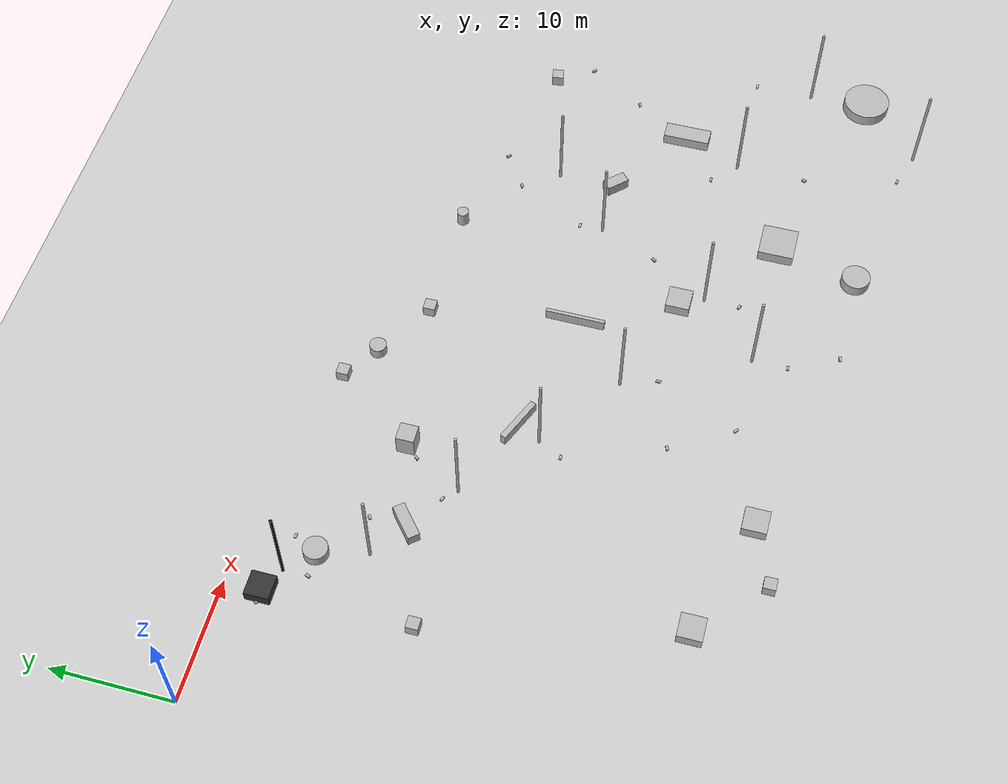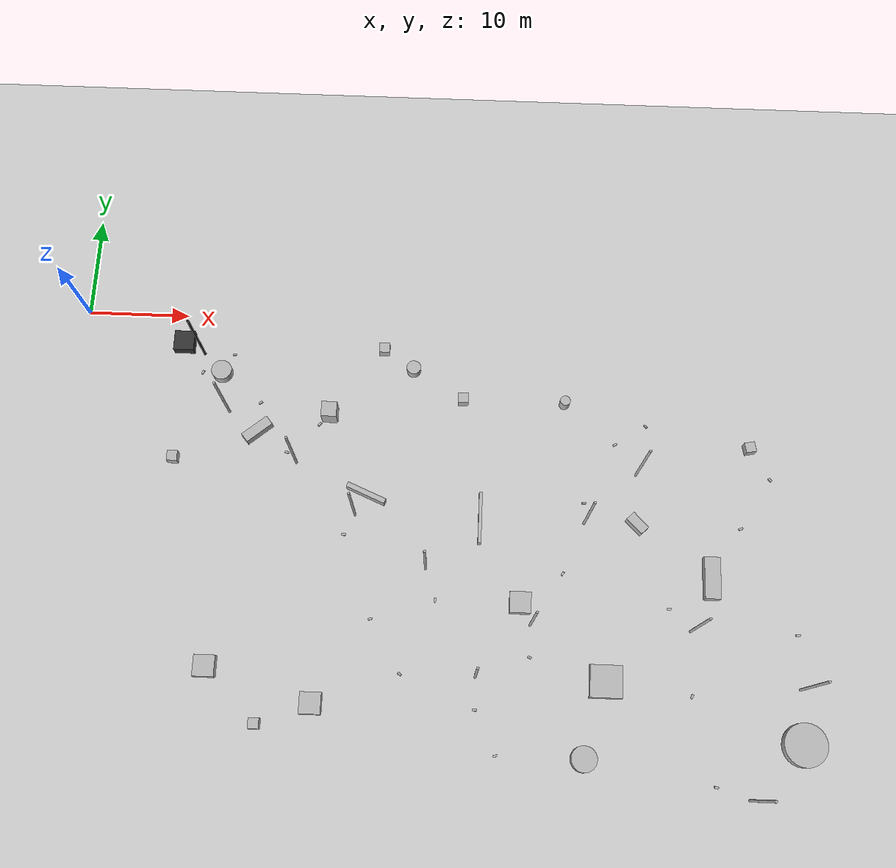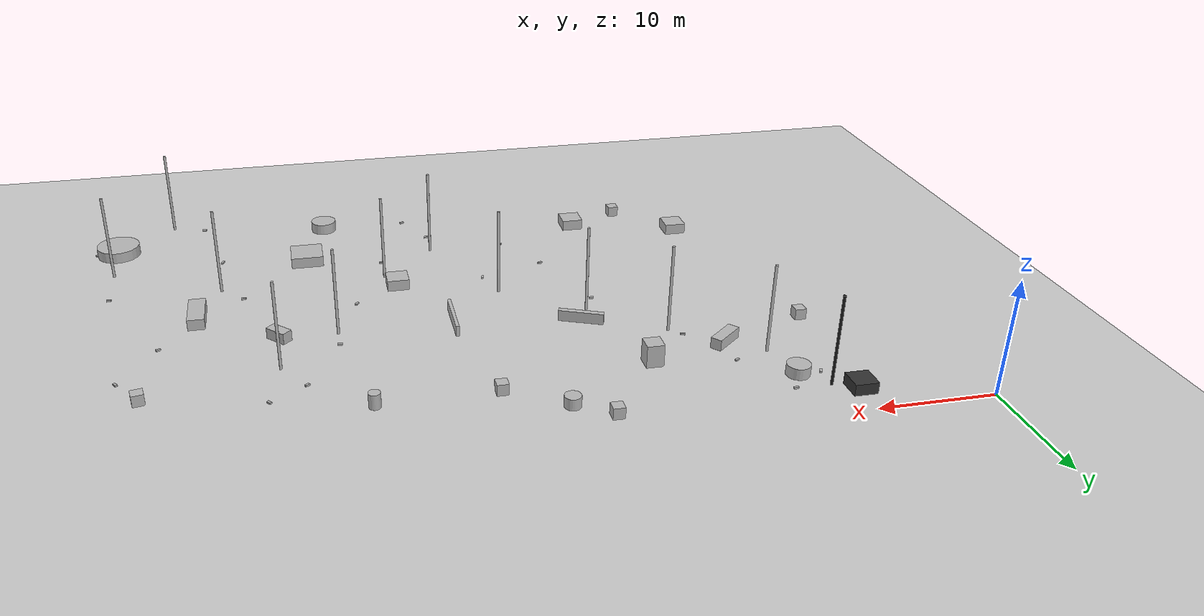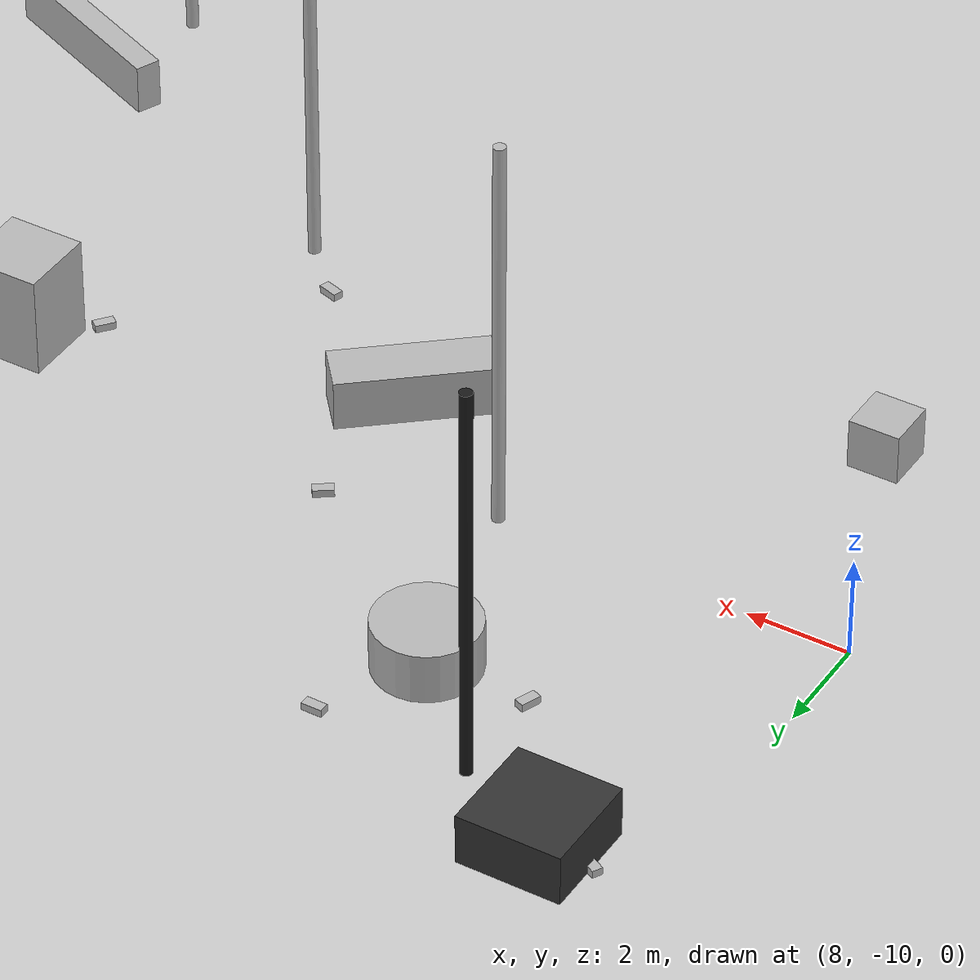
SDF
<?xml version="1.0" ?>
<sdf version="1.9">
  <world name="gauntlet_world">
    <spherical_coordinates>
      <surface_model>EARTH_WGS84</surface_model>
      <world_frame_orientation>ENU</world_frame_orientation>
      <latitude_deg>36.61002559225</latitude_deg>
      <longitude_deg>127.28772570583</longitude_deg>
      <elevation>0.0</elevation>
      <heading_deg>0.0</heading_deg>
    </spherical_coordinates>

    <!-- PHYSICS & CORE SYSTEMS -->
    <physics name="1ms" type="ode">
      <max_step_size>0.001</max_step_size>
      <real_time_factor>1.0</real_time_factor>
    </physics>

    <plugin filename="gz-sim-physics-system" name="gz::sim::systems::Physics" />
    <plugin filename="gz-sim-user-commands-system" name="gz::sim::systems::UserCommands" />
    <plugin filename="gz-sim-scene-broadcaster-system" name="gz::sim::systems::SceneBroadcaster" />
    <plugin filename="gz-sim-sensors-system" name="gz::sim::systems::Sensors"><render_engine>ogre2</render_engine></plugin>
    <plugin filename="gz-sim-imu-system" name="gz::sim::systems::Imu" />
    <plugin filename="gz-sim-navsat-system" name="gz::sim::systems::NavSat" />

    <scene><ambient>0.4 0.4 0.4 1</ambient><background>0.7 0.7 0.7 1</background><shadows>true</shadows></scene>
    <light type="directional" name="sun"><cast_shadows>true</cast_shadows><pose>0 0 10 0 0 0</pose><diffuse>0.8 0.8 0.8 1</diffuse><specular>0.2 0.2 0.2 1</specular><direction>-0.5 0.1 -0.9</direction></light>

    <model name="ground_plane">
      <static>true</static>
      <link name="link">
        <collision name="collision"><geometry><plane><normal>0 0 1</normal><size>200 200</size></plane></geometry></collision>
        <visual name="visual"><geometry><plane><normal>0 0 1</normal><size>200 200</size></plane></geometry><material><ambient>0.8 0.8 0.8 1</ambient><diffuse>0.8 0.8 0.8 1</diffuse></material></visual>
      </link>
    </model>

    <!-- 12 TALL ELECTRIC POLES (RIGHT SIDE)        -->
    <model name="p1"><pose>12 -4 4 0 0 0</pose><static>1</static><link name="l"><collision name="c"><geometry><cylinder><radius>0.12</radius><length>8</length></cylinder></geometry></collision><visual name="v"><geometry><cylinder><radius>0.12</radius><length>8</length></cylinder></geometry><material><ambient>0.1 0.1 0.1 1</ambient></material></visual></link></model>
    <model name="p2"><pose>15 -10 4 0 0 0</pose><static>1</static><link name="l"><collision name="c"><geometry><cylinder><radius>0.12</radius><length>8</length></cylinder></geometry></collision><visual name="v"><geometry><cylinder><radius>0.12</radius><length>8</length></cylinder></geometry></visual></link></model>
    <model name="p3"><pose>22 -15 4 0 0 0</pose><static>1</static><link name="l"><collision name="c"><geometry><cylinder><radius>0.12</radius><length>8</length></cylinder></geometry></collision><visual name="v"><geometry><cylinder><radius>0.12</radius><length>8</length></cylinder></geometry></visual></link></model>
    <model name="p4"><pose>28 -20 4 0 0 0</pose><static>1</static><link name="l"><collision name="c"><geometry><cylinder><radius>0.12</radius><length>8</length></cylinder></geometry></collision><visual name="v"><geometry><cylinder><radius>0.12</radius><length>8</length></cylinder></geometry></visual></link></model>
    <model name="p5"><pose>35 -25 4 0 0 0</pose><static>1</static><link name="l"><collision name="c"><geometry><cylinder><radius>0.12</radius><length>8</length></cylinder></geometry></collision><visual name="v"><geometry><cylinder><radius>0.12</radius><length>8</length></cylinder></geometry></visual></link></model>
    <model name="p6"><pose>40 -35 4 0 0 0</pose><static>1</static><link name="l"><collision name="c"><geometry><cylinder><radius>0.12</radius><length>8</length></cylinder></geometry></collision><visual name="v"><geometry><cylinder><radius>0.12</radius><length>8</length></cylinder></geometry></visual></link></model>
    <model name="p7"><pose>45 -30 4 0 0 0</pose><static>1</static><link name="l"><collision name="c"><geometry><cylinder><radius>0.12</radius><length>8</length></cylinder></geometry></collision><visual name="v"><geometry><cylinder><radius>0.12</radius><length>8</length></cylinder></geometry></visual></link></model>
    <model name="p8"><pose>50 -20 4 0 0 0</pose><static>1</static><link name="l"><collision name="c"><geometry><cylinder><radius>0.12</radius><length>8</length></cylinder></geometry></collision><visual name="v"><geometry><cylinder><radius>0.12</radius><length>8</length></cylinder></geometry></visual></link></model>
    <model name="p9"><pose>55 -15 4 0 0 0</pose><static>1</static><link name="l"><collision name="c"><geometry><cylinder><radius>0.12</radius><length>8</length></cylinder></geometry></collision><visual name="v"><geometry><cylinder><radius>0.12</radius><length>8</length></cylinder></geometry></visual></link></model>
    <model name="p10"><pose>60 -30 4 0 0 0</pose><static>1</static><link name="l"><collision name="c"><geometry><cylinder><radius>0.12</radius><length>8</length></cylinder></geometry></collision><visual name="v"><geometry><cylinder><radius>0.12</radius><length>8</length></cylinder></geometry></visual></link></model>
    <model name="p11"><pose>65 -45 4 0 0 0</pose><static>1</static><link name="l"><collision name="c"><geometry><cylinder><radius>0.12</radius><length>8</length></cylinder></geometry></collision><visual name="v"><geometry><cylinder><radius>0.12</radius><length>8</length></cylinder></geometry></visual></link></model>
    <model name="p12"><pose>70 -35 4 0 0 0</pose><static>1</static><link name="l"><collision name="c"><geometry><cylinder><radius>0.12</radius><length>8</length></cylinder></geometry></collision><visual name="v"><geometry><cylinder><radius>0.12</radius><length>8</length></cylinder></geometry></visual></link></model>

    <!-- 25 MIXED SHAPES (CLUSTERED RIGHT)          -->
    <model name="s1"><pose>10 -3 0.5 0 0 0</pose><static>1</static><link name="l"><collision name="c"><geometry><box><size>2 2 1</size></box></geometry></collision><visual name="v"><geometry><box><size>2 2 1</size></box></geometry><material><ambient>0.2 0.2 0.2 1</ambient></material></visual></link></model>
    <model name="s2"><pose>14 -6 0.5 0 0 0</pose><static>1</static><link name="l"><collision name="c"><geometry><cylinder><radius>1</radius><length>1</length></cylinder></geometry></collision><visual name="v"><geometry><cylinder><radius>1</radius><length>1</length></cylinder></geometry></visual></link></model>
    <model name="s3"><pose>18 -12 0.5 0 0 0.7</pose><static>1</static><link name="l"><collision name="c"><geometry><box><size>3 1 1</size></box></geometry></collision><visual name="v"><geometry><box><size>3 1 1</size></box></geometry></visual></link></model>
    <model name="s5"><pose>25 -10 1.0 0 0 0</pose><static>1</static><link name="l"><collision name="c"><geometry><box><size>1.5 1.5 2</size></box></geometry></collision><visual name="v"><geometry><box><size>1.5 1.5 2</size></box></geometry></visual></link></model>
    <model name="s6"><pose>29 -18 0.5 0 0 -0.4</pose><static>1</static><link name="l"><collision name="c"><geometry><box><size>4 0.5 1</size></box></geometry></collision><visual name="v"><geometry><box><size>4 0.5 1</size></box></geometry></visual></link></model>
    <model name="s7"><pose>33 -5 0.5 0 0 0</pose><static>1</static><link name="l"><collision name="c"><geometry><cylinder><radius>0.7</radius><length>1</length></cylinder></geometry></collision><visual name="v"><geometry><cylinder><radius>0.7</radius><length>1</length></cylinder></geometry></visual></link></model>
    <model name="s9"><pose>40 -20 0.5 0 0 1.57</pose><static>1</static><link name="l"><collision name="c"><geometry><box><size>5 0.3 1</size></box></geometry></collision><visual name="v"><geometry><box><size>5 0.3 1</size></box></geometry></visual></link></model>
    <model name="s10"><pose>44 -28 0.5 0 0 0</pose><static>1</static><link name="l"><collision name="c"><geometry><box><size>2 2 1</size></box></geometry></collision><visual name="v"><geometry><box><size>2 2 1</size></box></geometry></visual></link></model>
    <model name="s11"><pose>48 -8 0.5 0 0 0</pose><static>1</static><link name="l"><collision name="c"><geometry><cylinder><radius>0.5</radius><length>1.5</length></cylinder></geometry></collision><visual name="v"><geometry><cylinder><radius>0.5</radius><length>1.5</length></cylinder></geometry></visual></link></model>
    <model name="s12"><pose>52 -35 0.5 0 0 0</pose><static>1</static><link name="l"><collision name="c"><geometry><box><size>3 3 1</size></box></geometry></collision><visual name="v"><geometry><box><size>3 3 1</size></box></geometry></visual></link></model>
    <model name="s13"><pose>55 -20 0.5 0 0 -0.8</pose><static>1</static><link name="l"><collision name="c"><geometry><box><size>2 1 1</size></box></geometry></collision><visual name="v"><geometry><box><size>2 1 1</size></box></geometry></visual></link></model>
    <model name="s15"><pose>62 -25 0.5 0 0 0</pose><static>1</static><link name="l"><collision name="c"><geometry><box><size>1.5 4 1</size></box></geometry></collision><visual name="v"><geometry><box><size>1.5 4 1</size></box></geometry></visual></link></model>
    <model name="s16"><pose>66 -12 0.5 0 0 0.2</pose><static>1</static><link name="l"><collision name="c"><geometry><box><size>1 1 1</size></box></geometry></collision><visual name="v"><geometry><box><size>1 1 1</size></box></geometry></visual></link></model>
    <model name="s17"><pose>70 -40 0.5 0 0 0</pose><static>1</static><link name="l"><collision name="c"><geometry><cylinder><radius>2</radius><length>1</length></cylinder></geometry></collision><visual name="v"><geometry><cylinder><radius>2</radius><length>1</length></cylinder></geometry></visual></link></model>
    <model name="s18"><pose>30 -3 0.5 0 0 0</pose><static>1</static><link name="l"><collision name="c"><geometry><box><size>1 1 1</size></box></geometry></collision><visual name="v"><geometry><box><size>1 1 1</size></box></geometry></visual></link></model>
    <model name="s19"><pose>15 -35 0.5 0 0 0</pose><static>1</static><link name="l"><collision name="c"><geometry><box><size>2 2 1</size></box></geometry></collision><visual name="v"><geometry><box><size>2 2 1</size></box></geometry></visual></link></model>
    <model name="s21"><pose>20 -40 0.5 0 0 0</pose><static>1</static><link name="l"><collision name="c"><geometry><box><size>1 1 1</size></box></geometry></collision><visual name="v"><geometry><box><size>1 1 1</size></box></geometry></visual></link></model>
    <model name="s22"><pose>38 -8 0.5 0 0 0</pose><static>1</static><link name="l"><collision name="c"><geometry><box><size>1 1 1</size></box></geometry></collision><visual name="v"><geometry><box><size>1 1 1</size></box></geometry></visual></link></model>
    <model name="s23"><pose>50 -42 0.5 0 0 0</pose><static>1</static><link name="l"><collision name="c"><geometry><cylinder><radius>1.2</radius><length>1</length></cylinder></geometry></collision><visual name="v"><geometry><cylinder><radius>1.2</radius><length>1</length></cylinder></geometry></visual></link></model>
    <model name="s24"><pose>10 -15 0.5 0 0 0</pose><static>1</static><link name="l"><collision name="c"><geometry><box><size>1 1 1</size></box></geometry></collision><visual name="v"><geometry><box><size>1 1 1</size></box></geometry></visual></link></model>
    <model name="s25"><pose>25 -38 0.5 0 0 0</pose><static>1</static><link name="l"><collision name="c"><geometry><box><size>2 2 1</size></box></geometry></collision><visual name="v"><geometry><box><size>2 2 1</size></box></geometry></visual></link></model>

    <!-- 25 LOW-PROFILE BRICKS (15cm Height)        -->
    <model name="b2"><pose>9 -3 0.075 0 0 -0.5</pose><static>1</static><link name="l"><collision name="c"><geometry><box><size>0.4 0.2 0.15</size></box></geometry></collision><visual name="v"><geometry><box><size>0.4 0.2 0.15</size></box></geometry></visual></link></model>
    <model name="b3"><pose>12 -6 0.075 0 0 1.2</pose><static>1</static><link name="l"><collision name="c"><geometry><box><size>0.4 0.2 0.15</size></box></geometry></collision><visual name="v"><geometry><box><size>0.4 0.2 0.15</size></box></geometry></visual></link></model>
    <model name="b4"><pose>15 -4 0.075 0 0 0</pose><static>1</static><link name="l"><collision name="c"><geometry><box><size>0.4 0.2 0.15</size></box></geometry></collision><visual name="v"><geometry><box><size>0.4 0.2 0.15</size></box></geometry></visual></link></model>
    <model name="b5"><pose>18 -9 0.075 0 0 0.6</pose><static>1</static><link name="l"><collision name="c"><geometry><box><size>0.4 0.2 0.15</size></box></geometry></collision><visual name="v"><geometry><box><size>0.4 0.2 0.15</size></box></geometry></visual></link></model>
    <model name="b6"><pose>21 -14 0.075 0 0 -0.3</pose><static>1</static><link name="l"><collision name="c"><geometry><box><size>0.4 0.2 0.15</size></box></geometry></collision><visual name="v"><geometry><box><size>0.4 0.2 0.15</size></box></geometry></visual></link></model>
    <model name="b7"><pose>24 -11 0.075 0 0 0.9</pose><static>1</static><link name="l"><collision name="c"><geometry><box><size>0.4 0.2 0.15</size></box></geometry></collision><visual name="v"><geometry><box><size>0.4 0.2 0.15</size></box></geometry></visual></link></model>
    <model name="b8"><pose>27 -22 0.075 0 0 0</pose><static>1</static><link name="l"><collision name="c"><geometry><box><size>0.4 0.2 0.15</size></box></geometry></collision><visual name="v"><geometry><box><size>0.4 0.2 0.15</size></box></geometry></visual></link></model>
    <model name="b9"><pose>30 -30 0.075 0 0 0.4</pose><static>1</static><link name="l"><collision name="c"><geometry><box><size>0.4 0.2 0.15</size></box></geometry></collision><visual name="v"><geometry><box><size>0.4 0.2 0.15</size></box></geometry></visual></link></model>
    <model name="b10"><pose>33 -35 0.075 0 0 -0.7</pose><static>1</static><link name="l"><collision name="c"><geometry><box><size>0.4 0.2 0.15</size></box></geometry></collision><visual name="v"><geometry><box><size>0.4 0.2 0.15</size></box></geometry></visual></link></model>
    <model name="b11"><pose>36 -28 0.075 0 0 1.5</pose><static>1</static><link name="l"><collision name="c"><geometry><box><size>0.4 0.2 0.15</size></box></geometry></collision><visual name="v"><geometry><box><size>0.4 0.2 0.15</size></box></geometry></visual></link></model>
    <model name="b12"><pose>40 -38 0.075 0 0 0</pose><static>1</static><link name="l"><collision name="c"><geometry><box><size>0.4 0.2 0.15</size></box></geometry></collision><visual name="v"><geometry><box><size>0.4 0.2 0.15</size></box></geometry></visual></link></model>
    <model name="b13"><pose>42 -42 0.075 0 0 0.2</pose><static>1</static><link name="l"><collision name="c"><geometry><box><size>0.4 0.2 0.15</size></box></geometry></collision><visual name="v"><geometry><box><size>0.4 0.2 0.15</size></box></geometry></visual></link></model>
    <model name="b14"><pose>45 -33 0.075 0 0 -0.4</pose><static>1</static><link name="l"><collision name="c"><geometry><box><size>0.4 0.2 0.15</size></box></geometry></collision><visual name="v"><geometry><box><size>0.4 0.2 0.15</size></box></geometry></visual></link></model>
    <model name="b15"><pose>48 -25 0.075 0 0 1.0</pose><static>1</static><link name="l"><collision name="c"><geometry><box><size>0.4 0.2 0.15</size></box></geometry></collision><visual name="v"><geometry><box><size>0.4 0.2 0.15</size></box></geometry></visual></link></model>
    <model name="b16"><pose>50 -18 0.075 0 0 0</pose><static>1</static><link name="l"><collision name="c"><geometry><box><size>0.4 0.2 0.15</size></box></geometry></collision><visual name="v"><geometry><box><size>0.4 0.2 0.15</size></box></geometry></visual></link></model>
    <model name="b17"><pose>53 -12 0.075 0 0 0.5</pose><static>1</static><link name="l"><collision name="c"><geometry><box><size>0.4 0.2 0.15</size></box></geometry></collision><visual name="v"><geometry><box><size>0.4 0.2 0.15</size></box></geometry></visual></link></model>
    <model name="b18"><pose>56 -10 0.075 0 0 -0.8</pose><static>1</static><link name="l"><collision name="c"><geometry><box><size>0.4 0.2 0.15</size></box></geometry></collision><visual name="v"><geometry><box><size>0.4 0.2 0.15</size></box></geometry></visual></link></model>
    <model name="b19"><pose>58 -28 0.075 0 0 0</pose><static>1</static><link name="l"><collision name="c"><geometry><box><size>0.4 0.2 0.15</size></box></geometry></collision><visual name="v"><geometry><box><size>0.4 0.2 0.15</size></box></geometry></visual></link></model>
    <model name="b20"><pose>60 -36 0.075 0 0 1.2</pose><static>1</static><link name="l"><collision name="c"><geometry><box><size>0.4 0.2 0.15</size></box></geometry></collision><visual name="v"><geometry><box><size>0.4 0.2 0.15</size></box></geometry></visual></link></model>
    <model name="b21"><pose>62 -44 0.075 0 0 -0.2</pose><static>1</static><link name="l"><collision name="c"><geometry><box><size>0.4 0.2 0.15</size></box></geometry></collision><visual name="v"><geometry><box><size>0.4 0.2 0.15</size></box></geometry></visual></link></model>
    <model name="b22"><pose>65 -20 0.075 0 0 0.4</pose><static>1</static><link name="l"><collision name="c"><geometry><box><size>0.4 0.2 0.15</size></box></geometry></collision><visual name="v"><geometry><box><size>0.4 0.2 0.15</size></box></geometry></visual></link></model>
    <model name="b23"><pose>68 -15 0.075 0 0 -0.9</pose><static>1</static><link name="l"><collision name="c"><geometry><box><size>0.4 0.2 0.15</size></box></geometry></collision><visual name="v"><geometry><box><size>0.4 0.2 0.15</size></box></geometry></visual></link></model>
    <model name="b24"><pose>70 -30 0.075 0 0 0</pose><static>1</static><link name="l"><collision name="c"><geometry><box><size>0.4 0.2 0.15</size></box></geometry></collision><visual name="v"><geometry><box><size>0.4 0.2 0.15</size></box></geometry></visual></link></model>
    <model name="b25"><pose>72 -40 0.075 0 0 0.7</pose><static>1</static><link name="l"><collision name="c"><geometry><box><size>0.4 0.2 0.15</size></box></geometry></collision><visual name="v"><geometry><box><size>0.4 0.2 0.15</size></box></geometry></visual></link></model>

  </world>
</sdf>
